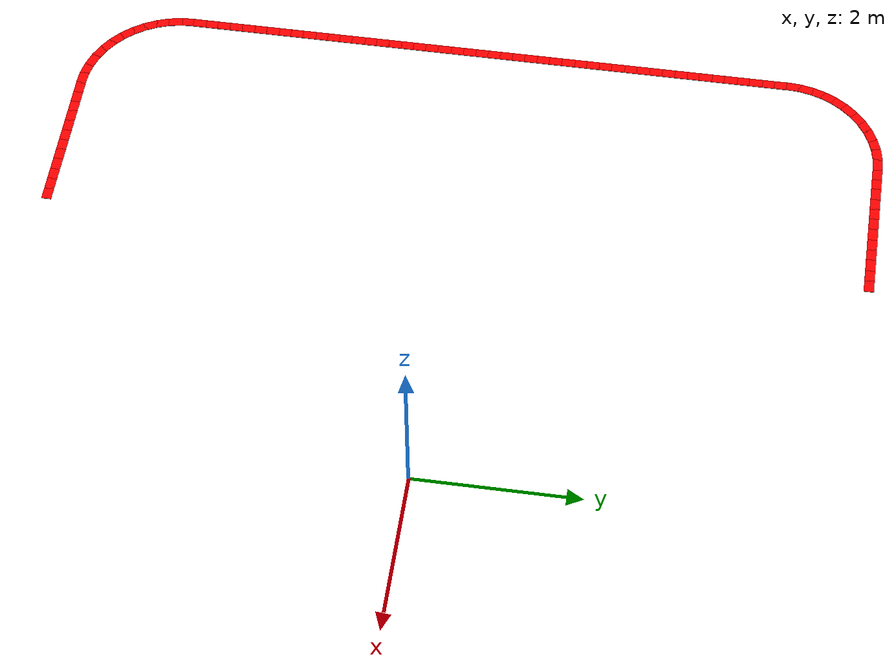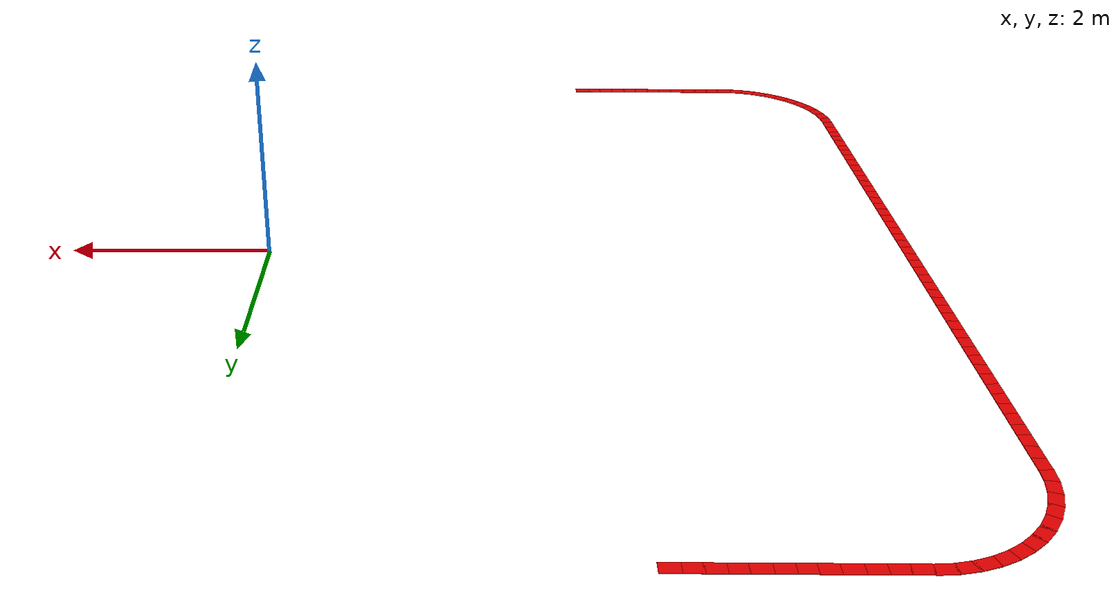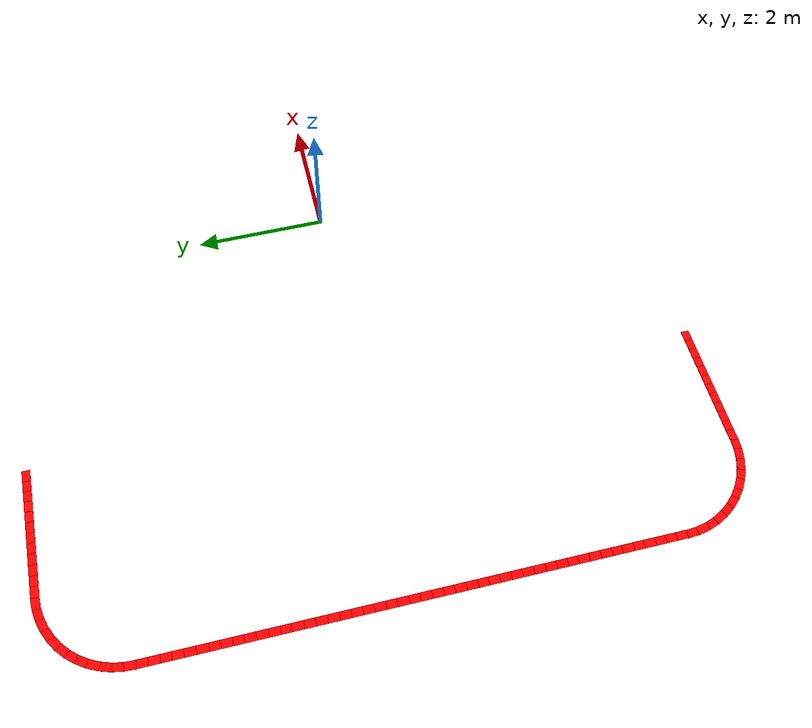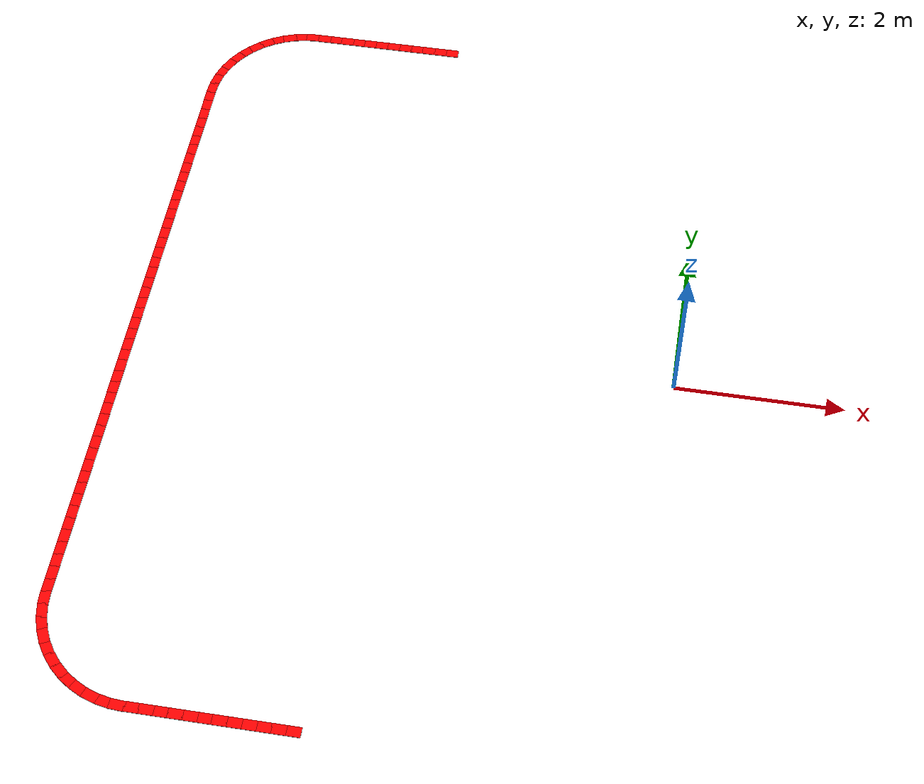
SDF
<sdf version="1.6">
 <world name="transformer_world">
  <model name="path_bottom_0">
   <static>true</static>
   <pose>-5.22090 -5.00000 0.00300 0 0 0.00000</pose>
   <link name="link">
    <visual name="visual">
     <cast_shadows>false</cast_shadows>
     <geometry><box><size>0.16821 0.12000 0.00600</size></box></geometry>
     <material><ambient>1 0 0 1</ambient><diffuse>1 0 0 1</diffuse><emissive>0.35 0 0 1</emissive></material>
    </visual>
   </link>
  </model>
  <model name="path_bottom_1">
   <static>true</static>
   <pose>-5.06269 -5.00000 0.00300 0 0 0.00000</pose>
   <link name="link">
    <visual name="visual">
     <cast_shadows>false</cast_shadows>
     <geometry><box><size>0.16821 0.12000 0.00600</size></box></geometry>
     <material><ambient>1 0 0 1</ambient><diffuse>1 0 0 1</diffuse><emissive>0.35 0 0 1</emissive></material>
    </visual>
   </link>
  </model>
  <model name="path_bottom_2">
   <static>true</static>
   <pose>-4.90448 -5.00000 0.00300 0 0 0.00000</pose>
   <link name="link">
    <visual name="visual">
     <cast_shadows>false</cast_shadows>
     <geometry><box><size>0.16821 0.12000 0.00600</size></box></geometry>
     <material><ambient>1 0 0 1</ambient><diffuse>1 0 0 1</diffuse><emissive>0.35 0 0 1</emissive></material>
    </visual>
   </link>
  </model>
  <model name="path_bottom_3">
   <static>true</static>
   <pose>-4.74627 -5.00000 0.00300 0 0 0.00000</pose>
   <link name="link">
    <visual name="visual">
     <cast_shadows>false</cast_shadows>
     <geometry><box><size>0.16821 0.12000 0.00600</size></box></geometry>
     <material><ambient>1 0 0 1</ambient><diffuse>1 0 0 1</diffuse><emissive>0.35 0 0 1</emissive></material>
    </visual>
   </link>
  </model>
  <model name="path_bottom_4">
   <static>true</static>
   <pose>-4.58806 -5.00000 0.00300 0 0 0.00000</pose>
   <link name="link">
    <visual name="visual">
     <cast_shadows>false</cast_shadows>
     <geometry><box><size>0.16821 0.12000 0.00600</size></box></geometry>
     <material><ambient>1 0 0 1</ambient><diffuse>1 0 0 1</diffuse><emissive>0.35 0 0 1</emissive></material>
    </visual>
   </link>
  </model>
  <model name="path_bottom_5">
   <static>true</static>
   <pose>-4.42985 -5.00000 0.00300 0 0 0.00000</pose>
   <link name="link">
    <visual name="visual">
     <cast_shadows>false</cast_shadows>
     <geometry><box><size>0.16821 0.12000 0.00600</size></box></geometry>
     <material><ambient>1 0 0 1</ambient><diffuse>1 0 0 1</diffuse><emissive>0.35 0 0 1</emissive></material>
    </visual>
   </link>
  </model>
  <model name="path_bottom_6">
   <static>true</static>
   <pose>-4.27164 -5.00000 0.00300 0 0 0.00000</pose>
   <link name="link">
    <visual name="visual">
     <cast_shadows>false</cast_shadows>
     <geometry><box><size>0.16821 0.12000 0.00600</size></box></geometry>
     <material><ambient>1 0 0 1</ambient><diffuse>1 0 0 1</diffuse><emissive>0.35 0 0 1</emissive></material>
    </visual>
   </link>
  </model>
  <model name="path_bottom_7">
   <static>true</static>
   <pose>-4.11343 -5.00000 0.00300 0 0 0.00000</pose>
   <link name="link">
    <visual name="visual">
     <cast_shadows>false</cast_shadows>
     <geometry><box><size>0.16821 0.12000 0.00600</size></box></geometry>
     <material><ambient>1 0 0 1</ambient><diffuse>1 0 0 1</diffuse><emissive>0.35 0 0 1</emissive></material>
    </visual>
   </link>
  </model>
  <model name="path_bottom_8">
   <static>true</static>
   <pose>-3.95522 -5.00000 0.00300 0 0 0.00000</pose>
   <link name="link">
    <visual name="visual">
     <cast_shadows>false</cast_shadows>
     <geometry><box><size>0.16821 0.12000 0.00600</size></box></geometry>
     <material><ambient>1 0 0 1</ambient><diffuse>1 0 0 1</diffuse><emissive>0.35 0 0 1</emissive></material>
    </visual>
   </link>
  </model>
  <model name="path_bottom_9">
   <static>true</static>
   <pose>-3.79701 -5.00000 0.00300 0 0 0.00000</pose>
   <link name="link">
    <visual name="visual">
     <cast_shadows>false</cast_shadows>
     <geometry><box><size>0.16821 0.12000 0.00600</size></box></geometry>
     <material><ambient>1 0 0 1</ambient><diffuse>1 0 0 1</diffuse><emissive>0.35 0 0 1</emissive></material>
    </visual>
   </link>
  </model>
  <model name="path_bottom_10">
   <static>true</static>
   <pose>-3.63881 -5.00000 0.00300 0 0 0.00000</pose>
   <link name="link">
    <visual name="visual">
     <cast_shadows>false</cast_shadows>
     <geometry><box><size>0.16821 0.12000 0.00600</size></box></geometry>
     <material><ambient>1 0 0 1</ambient><diffuse>1 0 0 1</diffuse><emissive>0.35 0 0 1</emissive></material>
    </visual>
   </link>
  </model>
  <model name="path_bottom_11">
   <static>true</static>
   <pose>-3.48060 -5.00000 0.00300 0 0 0.00000</pose>
   <link name="link">
    <visual name="visual">
     <cast_shadows>false</cast_shadows>
     <geometry><box><size>0.16821 0.12000 0.00600</size></box></geometry>
     <material><ambient>1 0 0 1</ambient><diffuse>1 0 0 1</diffuse><emissive>0.35 0 0 1</emissive></material>
    </visual>
   </link>
  </model>
  <model name="path_top_55">
   <static>true</static>
   <pose>-3.48060 5.00000 0.00300 0 0 3.14159</pose>
   <link name="link">
    <visual name="visual">
     <cast_shadows>false</cast_shadows>
     <geometry><box><size>0.16821 0.12000 0.00600</size></box></geometry>
     <material><ambient>1 0 0 1</ambient><diffuse>1 0 0 1</diffuse><emissive>0.35 0 0 1</emissive></material>
    </visual>
   </link>
  </model>
  <model name="path_top_56">
   <static>true</static>
   <pose>-3.63881 5.00000 0.00300 0 0 3.14159</pose>
   <link name="link">
    <visual name="visual">
     <cast_shadows>false</cast_shadows>
     <geometry><box><size>0.16821 0.12000 0.00600</size></box></geometry>
     <material><ambient>1 0 0 1</ambient><diffuse>1 0 0 1</diffuse><emissive>0.35 0 0 1</emissive></material>
    </visual>
   </link>
  </model>
  <model name="path_top_57">
   <static>true</static>
   <pose>-3.79701 5.00000 0.00300 0 0 3.14159</pose>
   <link name="link">
    <visual name="visual">
     <cast_shadows>false</cast_shadows>
     <geometry><box><size>0.16821 0.12000 0.00600</size></box></geometry>
     <material><ambient>1 0 0 1</ambient><diffuse>1 0 0 1</diffuse><emissive>0.35 0 0 1</emissive></material>
    </visual>
   </link>
  </model>
  <model name="path_top_58">
   <static>true</static>
   <pose>-3.95522 5.00000 0.00300 0 0 3.14159</pose>
   <link name="link">
    <visual name="visual">
     <cast_shadows>false</cast_shadows>
     <geometry><box><size>0.16821 0.12000 0.00600</size></box></geometry>
     <material><ambient>1 0 0 1</ambient><diffuse>1 0 0 1</diffuse><emissive>0.35 0 0 1</emissive></material>
    </visual>
   </link>
  </model>
  <model name="path_top_59">
   <static>true</static>
   <pose>-4.11343 5.00000 0.00300 0 0 3.14159</pose>
   <link name="link">
    <visual name="visual">
     <cast_shadows>false</cast_shadows>
     <geometry><box><size>0.16821 0.12000 0.00600</size></box></geometry>
     <material><ambient>1 0 0 1</ambient><diffuse>1 0 0 1</diffuse><emissive>0.35 0 0 1</emissive></material>
    </visual>
   </link>
  </model>
  <model name="path_top_60">
   <static>true</static>
   <pose>-4.27164 5.00000 0.00300 0 0 3.14159</pose>
   <link name="link">
    <visual name="visual">
     <cast_shadows>false</cast_shadows>
     <geometry><box><size>0.16821 0.12000 0.00600</size></box></geometry>
     <material><ambient>1 0 0 1</ambient><diffuse>1 0 0 1</diffuse><emissive>0.35 0 0 1</emissive></material>
    </visual>
   </link>
  </model>
  <model name="path_top_61">
   <static>true</static>
   <pose>-4.42985 5.00000 0.00300 0 0 3.14159</pose>
   <link name="link">
    <visual name="visual">
     <cast_shadows>false</cast_shadows>
     <geometry><box><size>0.16821 0.12000 0.00600</size></box></geometry>
     <material><ambient>1 0 0 1</ambient><diffuse>1 0 0 1</diffuse><emissive>0.35 0 0 1</emissive></material>
    </visual>
   </link>
  </model>
  <model name="path_top_62">
   <static>true</static>
   <pose>-4.58806 5.00000 0.00300 0 0 3.14159</pose>
   <link name="link">
    <visual name="visual">
     <cast_shadows>false</cast_shadows>
     <geometry><box><size>0.16821 0.12000 0.00600</size></box></geometry>
     <material><ambient>1 0 0 1</ambient><diffuse>1 0 0 1</diffuse><emissive>0.35 0 0 1</emissive></material>
    </visual>
   </link>
  </model>
  <model name="path_top_63">
   <static>true</static>
   <pose>-4.74627 5.00000 0.00300 0 0 3.14159</pose>
   <link name="link">
    <visual name="visual">
     <cast_shadows>false</cast_shadows>
     <geometry><box><size>0.16821 0.12000 0.00600</size></box></geometry>
     <material><ambient>1 0 0 1</ambient><diffuse>1 0 0 1</diffuse><emissive>0.35 0 0 1</emissive></material>
    </visual>
   </link>
  </model>
  <model name="path_top_64">
   <static>true</static>
   <pose>-4.90448 5.00000 0.00300 0 0 3.14159</pose>
   <link name="link">
    <visual name="visual">
     <cast_shadows>false</cast_shadows>
     <geometry><box><size>0.16821 0.12000 0.00600</size></box></geometry>
     <material><ambient>1 0 0 1</ambient><diffuse>1 0 0 1</diffuse><emissive>0.35 0 0 1</emissive></material>
    </visual>
   </link>
  </model>
  <model name="path_top_65">
   <static>true</static>
   <pose>-5.06269 5.00000 0.00300 0 0 3.14159</pose>
   <link name="link">
    <visual name="visual">
     <cast_shadows>false</cast_shadows>
     <geometry><box><size>0.16821 0.12000 0.00600</size></box></geometry>
     <material><ambient>1 0 0 1</ambient><diffuse>1 0 0 1</diffuse><emissive>0.35 0 0 1</emissive></material>
    </visual>
   </link>
  </model>
  <model name="path_top_66">
   <static>true</static>
   <pose>-5.22090 5.00000 0.00300 0 0 3.14159</pose>
   <link name="link">
    <visual name="visual">
     <cast_shadows>false</cast_shadows>
     <geometry><box><size>0.16821 0.12000 0.00600</size></box></geometry>
     <material><ambient>1 0 0 1</ambient><diffuse>1 0 0 1</diffuse><emissive>0.35 0 0 1</emissive></material>
    </visual>
   </link>
  </model>
  <model name="path_corner_tl_0">
   <static>true</static>
   <pose>-5.37848 4.99743 0.00300 0 0 3.20704</pose>
   <link name="link">
    <visual name="visual">
     <cast_shadows>false</cast_shadows>
     <geometry><box><size>0.17708 0.12000 0.00600</size></box></geometry>
     <material><ambient>1 0 0 1</ambient><diffuse>1 0 0 1</diffuse><emissive>0.35 0 0 1</emissive></material>
    </visual>
   </link>
  </model>
  <model name="path_corner_tl_1">
   <static>true</static>
   <pose>-5.53411 4.97694 0.00300 0 0 3.33794</pose>
   <link name="link">
    <visual name="visual">
     <cast_shadows>false</cast_shadows>
     <geometry><box><size>0.17708 0.12000 0.00600</size></box></geometry>
     <material><ambient>1 0 0 1</ambient><diffuse>1 0 0 1</diffuse><emissive>0.35 0 0 1</emissive></material>
    </visual>
   </link>
  </model>
  <model name="path_corner_tl_2">
   <static>true</static>
   <pose>-5.68573 4.93632 0.00300 0 0 3.46884</pose>
   <link name="link">
    <visual name="visual">
     <cast_shadows>false</cast_shadows>
     <geometry><box><size>0.17708 0.12000 0.00600</size></box></geometry>
     <material><ambient>1 0 0 1</ambient><diffuse>1 0 0 1</diffuse><emissive>0.35 0 0 1</emissive></material>
    </visual>
   </link>
  </model>
  <model name="path_corner_tl_3">
   <static>true</static>
   <pose>-5.83075 4.87625 0.00300 0 0 3.59974</pose>
   <link name="link">
    <visual name="visual">
     <cast_shadows>false</cast_shadows>
     <geometry><box><size>0.17708 0.12000 0.00600</size></box></geometry>
     <material><ambient>1 0 0 1</ambient><diffuse>1 0 0 1</diffuse><emissive>0.35 0 0 1</emissive></material>
    </visual>
   </link>
  </model>
  <model name="path_corner_tl_4">
   <static>true</static>
   <pose>-5.96668 4.79776 0.00300 0 0 3.73064</pose>
   <link name="link">
    <visual name="visual">
     <cast_shadows>false</cast_shadows>
     <geometry><box><size>0.17708 0.12000 0.00600</size></box></geometry>
     <material><ambient>1 0 0 1</ambient><diffuse>1 0 0 1</diffuse><emissive>0.35 0 0 1</emissive></material>
    </visual>
   </link>
  </model>
  <model name="path_corner_tl_5">
   <static>true</static>
   <pose>-6.09121 4.70221 0.00300 0 0 3.86154</pose>
   <link name="link">
    <visual name="visual">
     <cast_shadows>false</cast_shadows>
     <geometry><box><size>0.17708 0.12000 0.00600</size></box></geometry>
     <material><ambient>1 0 0 1</ambient><diffuse>1 0 0 1</diffuse><emissive>0.35 0 0 1</emissive></material>
    </visual>
   </link>
  </model>
  <model name="path_corner_tl_6">
   <static>true</static>
   <pose>-6.20221 4.59121 0.00300 0 0 3.99244</pose>
   <link name="link">
    <visual name="visual">
     <cast_shadows>false</cast_shadows>
     <geometry><box><size>0.17708 0.12000 0.00600</size></box></geometry>
     <material><ambient>1 0 0 1</ambient><diffuse>1 0 0 1</diffuse><emissive>0.35 0 0 1</emissive></material>
    </visual>
   </link>
  </model>
  <model name="path_corner_tl_7">
   <static>true</static>
   <pose>-6.29776 4.46668 0.00300 0 0 4.12334</pose>
   <link name="link">
    <visual name="visual">
     <cast_shadows>false</cast_shadows>
     <geometry><box><size>0.17708 0.12000 0.00600</size></box></geometry>
     <material><ambient>1 0 0 1</ambient><diffuse>1 0 0 1</diffuse><emissive>0.35 0 0 1</emissive></material>
    </visual>
   </link>
  </model>
  <model name="path_corner_tl_8">
   <static>true</static>
   <pose>-6.37625 4.33075 0.00300 0 0 4.25424</pose>
   <link name="link">
    <visual name="visual">
     <cast_shadows>false</cast_shadows>
     <geometry><box><size>0.17708 0.12000 0.00600</size></box></geometry>
     <material><ambient>1 0 0 1</ambient><diffuse>1 0 0 1</diffuse><emissive>0.35 0 0 1</emissive></material>
    </visual>
   </link>
  </model>
  <model name="path_corner_tl_9">
   <static>true</static>
   <pose>-6.43632 4.18573 0.00300 0 0 4.38514</pose>
   <link name="link">
    <visual name="visual">
     <cast_shadows>false</cast_shadows>
     <geometry><box><size>0.17708 0.12000 0.00600</size></box></geometry>
     <material><ambient>1 0 0 1</ambient><diffuse>1 0 0 1</diffuse><emissive>0.35 0 0 1</emissive></material>
    </visual>
   </link>
  </model>
  <model name="path_corner_tl_10">
   <static>true</static>
   <pose>-6.47694 4.03411 0.00300 0 0 4.51604</pose>
   <link name="link">
    <visual name="visual">
     <cast_shadows>false</cast_shadows>
     <geometry><box><size>0.17708 0.12000 0.00600</size></box></geometry>
     <material><ambient>1 0 0 1</ambient><diffuse>1 0 0 1</diffuse><emissive>0.35 0 0 1</emissive></material>
    </visual>
   </link>
  </model>
  <model name="path_corner_tl_11">
   <static>true</static>
   <pose>-6.49743 3.87848 0.00300 0 0 4.64694</pose>
   <link name="link">
    <visual name="visual">
     <cast_shadows>false</cast_shadows>
     <geometry><box><size>0.17708 0.12000 0.00600</size></box></geometry>
     <material><ambient>1 0 0 1</ambient><diffuse>1 0 0 1</diffuse><emissive>0.35 0 0 1</emissive></material>
    </visual>
   </link>
  </model>
  <model name="path_left_0">
   <static>true</static>
   <pose>-6.50000 3.72083 0.00300 0 0 -1.57080</pose>
   <link name="link">
    <visual name="visual">
     <cast_shadows>false</cast_shadows>
     <geometry><box><size>0.16833 0.12000 0.00600</size></box></geometry>
     <material><ambient>1 0 0 1</ambient><diffuse>1 0 0 1</diffuse><emissive>0.35 0 0 1</emissive></material>
    </visual>
   </link>
  </model>
  <model name="path_left_1">
   <static>true</static>
   <pose>-6.50000 3.56250 0.00300 0 0 -1.57080</pose>
   <link name="link">
    <visual name="visual">
     <cast_shadows>false</cast_shadows>
     <geometry><box><size>0.16833 0.12000 0.00600</size></box></geometry>
     <material><ambient>1 0 0 1</ambient><diffuse>1 0 0 1</diffuse><emissive>0.35 0 0 1</emissive></material>
    </visual>
   </link>
  </model>
  <model name="path_left_2">
   <static>true</static>
   <pose>-6.50000 3.40417 0.00300 0 0 -1.57080</pose>
   <link name="link">
    <visual name="visual">
     <cast_shadows>false</cast_shadows>
     <geometry><box><size>0.16833 0.12000 0.00600</size></box></geometry>
     <material><ambient>1 0 0 1</ambient><diffuse>1 0 0 1</diffuse><emissive>0.35 0 0 1</emissive></material>
    </visual>
   </link>
  </model>
  <model name="path_left_3">
   <static>true</static>
   <pose>-6.50000 3.24583 0.00300 0 0 -1.57080</pose>
   <link name="link">
    <visual name="visual">
     <cast_shadows>false</cast_shadows>
     <geometry><box><size>0.16833 0.12000 0.00600</size></box></geometry>
     <material><ambient>1 0 0 1</ambient><diffuse>1 0 0 1</diffuse><emissive>0.35 0 0 1</emissive></material>
    </visual>
   </link>
  </model>
  <model name="path_left_4">
   <static>true</static>
   <pose>-6.50000 3.08750 0.00300 0 0 -1.57080</pose>
   <link name="link">
    <visual name="visual">
     <cast_shadows>false</cast_shadows>
     <geometry><box><size>0.16833 0.12000 0.00600</size></box></geometry>
     <material><ambient>1 0 0 1</ambient><diffuse>1 0 0 1</diffuse><emissive>0.35 0 0 1</emissive></material>
    </visual>
   </link>
  </model>
  <model name="path_left_5">
   <static>true</static>
   <pose>-6.50000 2.92917 0.00300 0 0 -1.57080</pose>
   <link name="link">
    <visual name="visual">
     <cast_shadows>false</cast_shadows>
     <geometry><box><size>0.16833 0.12000 0.00600</size></box></geometry>
     <material><ambient>1 0 0 1</ambient><diffuse>1 0 0 1</diffuse><emissive>0.35 0 0 1</emissive></material>
    </visual>
   </link>
  </model>
  <model name="path_left_6">
   <static>true</static>
   <pose>-6.50000 2.77083 0.00300 0 0 -1.57080</pose>
   <link name="link">
    <visual name="visual">
     <cast_shadows>false</cast_shadows>
     <geometry><box><size>0.16833 0.12000 0.00600</size></box></geometry>
     <material><ambient>1 0 0 1</ambient><diffuse>1 0 0 1</diffuse><emissive>0.35 0 0 1</emissive></material>
    </visual>
   </link>
  </model>
  <model name="path_left_7">
   <static>true</static>
   <pose>-6.50000 2.61250 0.00300 0 0 -1.57080</pose>
   <link name="link">
    <visual name="visual">
     <cast_shadows>false</cast_shadows>
     <geometry><box><size>0.16833 0.12000 0.00600</size></box></geometry>
     <material><ambient>1 0 0 1</ambient><diffuse>1 0 0 1</diffuse><emissive>0.35 0 0 1</emissive></material>
    </visual>
   </link>
  </model>
  <model name="path_left_8">
   <static>true</static>
   <pose>-6.50000 2.45417 0.00300 0 0 -1.57080</pose>
   <link name="link">
    <visual name="visual">
     <cast_shadows>false</cast_shadows>
     <geometry><box><size>0.16833 0.12000 0.00600</size></box></geometry>
     <material><ambient>1 0 0 1</ambient><diffuse>1 0 0 1</diffuse><emissive>0.35 0 0 1</emissive></material>
    </visual>
   </link>
  </model>
  <model name="path_left_9">
   <static>true</static>
   <pose>-6.50000 2.29583 0.00300 0 0 -1.57080</pose>
   <link name="link">
    <visual name="visual">
     <cast_shadows>false</cast_shadows>
     <geometry><box><size>0.16833 0.12000 0.00600</size></box></geometry>
     <material><ambient>1 0 0 1</ambient><diffuse>1 0 0 1</diffuse><emissive>0.35 0 0 1</emissive></material>
    </visual>
   </link>
  </model>
  <model name="path_left_10">
   <static>true</static>
   <pose>-6.50000 2.13750 0.00300 0 0 -1.57080</pose>
   <link name="link">
    <visual name="visual">
     <cast_shadows>false</cast_shadows>
     <geometry><box><size>0.16833 0.12000 0.00600</size></box></geometry>
     <material><ambient>1 0 0 1</ambient><diffuse>1 0 0 1</diffuse><emissive>0.35 0 0 1</emissive></material>
    </visual>
   </link>
  </model>
  <model name="path_left_11">
   <static>true</static>
   <pose>-6.50000 1.97917 0.00300 0 0 -1.57080</pose>
   <link name="link">
    <visual name="visual">
     <cast_shadows>false</cast_shadows>
     <geometry><box><size>0.16833 0.12000 0.00600</size></box></geometry>
     <material><ambient>1 0 0 1</ambient><diffuse>1 0 0 1</diffuse><emissive>0.35 0 0 1</emissive></material>
    </visual>
   </link>
  </model>
  <model name="path_left_12">
   <static>true</static>
   <pose>-6.50000 1.82083 0.00300 0 0 -1.57080</pose>
   <link name="link">
    <visual name="visual">
     <cast_shadows>false</cast_shadows>
     <geometry><box><size>0.16833 0.12000 0.00600</size></box></geometry>
     <material><ambient>1 0 0 1</ambient><diffuse>1 0 0 1</diffuse><emissive>0.35 0 0 1</emissive></material>
    </visual>
   </link>
  </model>
  <model name="path_left_13">
   <static>true</static>
   <pose>-6.50000 1.66250 0.00300 0 0 -1.57080</pose>
   <link name="link">
    <visual name="visual">
     <cast_shadows>false</cast_shadows>
     <geometry><box><size>0.16833 0.12000 0.00600</size></box></geometry>
     <material><ambient>1 0 0 1</ambient><diffuse>1 0 0 1</diffuse><emissive>0.35 0 0 1</emissive></material>
    </visual>
   </link>
  </model>
  <model name="path_left_14">
   <static>true</static>
   <pose>-6.50000 1.50417 0.00300 0 0 -1.57080</pose>
   <link name="link">
    <visual name="visual">
     <cast_shadows>false</cast_shadows>
     <geometry><box><size>0.16833 0.12000 0.00600</size></box></geometry>
     <material><ambient>1 0 0 1</ambient><diffuse>1 0 0 1</diffuse><emissive>0.35 0 0 1</emissive></material>
    </visual>
   </link>
  </model>
  <model name="path_left_15">
   <static>true</static>
   <pose>-6.50000 1.34583 0.00300 0 0 -1.57080</pose>
   <link name="link">
    <visual name="visual">
     <cast_shadows>false</cast_shadows>
     <geometry><box><size>0.16833 0.12000 0.00600</size></box></geometry>
     <material><ambient>1 0 0 1</ambient><diffuse>1 0 0 1</diffuse><emissive>0.35 0 0 1</emissive></material>
    </visual>
   </link>
  </model>
  <model name="path_left_16">
   <static>true</static>
   <pose>-6.50000 1.18750 0.00300 0 0 -1.57080</pose>
   <link name="link">
    <visual name="visual">
     <cast_shadows>false</cast_shadows>
     <geometry><box><size>0.16833 0.12000 0.00600</size></box></geometry>
     <material><ambient>1 0 0 1</ambient><diffuse>1 0 0 1</diffuse><emissive>0.35 0 0 1</emissive></material>
    </visual>
   </link>
  </model>
  <model name="path_left_17">
   <static>true</static>
   <pose>-6.50000 1.02917 0.00300 0 0 -1.57080</pose>
   <link name="link">
    <visual name="visual">
     <cast_shadows>false</cast_shadows>
     <geometry><box><size>0.16833 0.12000 0.00600</size></box></geometry>
     <material><ambient>1 0 0 1</ambient><diffuse>1 0 0 1</diffuse><emissive>0.35 0 0 1</emissive></material>
    </visual>
   </link>
  </model>
  <model name="path_left_18">
   <static>true</static>
   <pose>-6.50000 0.87083 0.00300 0 0 -1.57080</pose>
   <link name="link">
    <visual name="visual">
     <cast_shadows>false</cast_shadows>
     <geometry><box><size>0.16833 0.12000 0.00600</size></box></geometry>
     <material><ambient>1 0 0 1</ambient><diffuse>1 0 0 1</diffuse><emissive>0.35 0 0 1</emissive></material>
    </visual>
   </link>
  </model>
  <model name="path_left_19">
   <static>true</static>
   <pose>-6.50000 0.71250 0.00300 0 0 -1.57080</pose>
   <link name="link">
    <visual name="visual">
     <cast_shadows>false</cast_shadows>
     <geometry><box><size>0.16833 0.12000 0.00600</size></box></geometry>
     <material><ambient>1 0 0 1</ambient><diffuse>1 0 0 1</diffuse><emissive>0.35 0 0 1</emissive></material>
    </visual>
   </link>
  </model>
  <model name="path_left_20">
   <static>true</static>
   <pose>-6.50000 0.55417 0.00300 0 0 -1.57080</pose>
   <link name="link">
    <visual name="visual">
     <cast_shadows>false</cast_shadows>
     <geometry><box><size>0.16833 0.12000 0.00600</size></box></geometry>
     <material><ambient>1 0 0 1</ambient><diffuse>1 0 0 1</diffuse><emissive>0.35 0 0 1</emissive></material>
    </visual>
   </link>
  </model>
  <model name="path_left_21">
   <static>true</static>
   <pose>-6.50000 0.39583 0.00300 0 0 -1.57080</pose>
   <link name="link">
    <visual name="visual">
     <cast_shadows>false</cast_shadows>
     <geometry><box><size>0.16833 0.12000 0.00600</size></box></geometry>
     <material><ambient>1 0 0 1</ambient><diffuse>1 0 0 1</diffuse><emissive>0.35 0 0 1</emissive></material>
    </visual>
   </link>
  </model>
  <model name="path_left_22">
   <static>true</static>
   <pose>-6.50000 0.23750 0.00300 0 0 -1.57080</pose>
   <link name="link">
    <visual name="visual">
     <cast_shadows>false</cast_shadows>
     <geometry><box><size>0.16833 0.12000 0.00600</size></box></geometry>
     <material><ambient>1 0 0 1</ambient><diffuse>1 0 0 1</diffuse><emissive>0.35 0 0 1</emissive></material>
    </visual>
   </link>
  </model>
  <model name="path_left_23">
   <static>true</static>
   <pose>-6.50000 0.07917 0.00300 0 0 -1.57080</pose>
   <link name="link">
    <visual name="visual">
     <cast_shadows>false</cast_shadows>
     <geometry><box><size>0.16833 0.12000 0.00600</size></box></geometry>
     <material><ambient>1 0 0 1</ambient><diffuse>1 0 0 1</diffuse><emissive>0.35 0 0 1</emissive></material>
    </visual>
   </link>
  </model>
  <model name="path_left_24">
   <static>true</static>
   <pose>-6.50000 -0.07917 0.00300 0 0 -1.57080</pose>
   <link name="link">
    <visual name="visual">
     <cast_shadows>false</cast_shadows>
     <geometry><box><size>0.16833 0.12000 0.00600</size></box></geometry>
     <material><ambient>1 0 0 1</ambient><diffuse>1 0 0 1</diffuse><emissive>0.35 0 0 1</emissive></material>
    </visual>
   </link>
  </model>
  <model name="path_left_25">
   <static>true</static>
   <pose>-6.50000 -0.23750 0.00300 0 0 -1.57080</pose>
   <link name="link">
    <visual name="visual">
     <cast_shadows>false</cast_shadows>
     <geometry><box><size>0.16833 0.12000 0.00600</size></box></geometry>
     <material><ambient>1 0 0 1</ambient><diffuse>1 0 0 1</diffuse><emissive>0.35 0 0 1</emissive></material>
    </visual>
   </link>
  </model>
  <model name="path_left_26">
   <static>true</static>
   <pose>-6.50000 -0.39583 0.00300 0 0 -1.57080</pose>
   <link name="link">
    <visual name="visual">
     <cast_shadows>false</cast_shadows>
     <geometry><box><size>0.16833 0.12000 0.00600</size></box></geometry>
     <material><ambient>1 0 0 1</ambient><diffuse>1 0 0 1</diffuse><emissive>0.35 0 0 1</emissive></material>
    </visual>
   </link>
  </model>
  <model name="path_left_27">
   <static>true</static>
   <pose>-6.50000 -0.55417 0.00300 0 0 -1.57080</pose>
   <link name="link">
    <visual name="visual">
     <cast_shadows>false</cast_shadows>
     <geometry><box><size>0.16833 0.12000 0.00600</size></box></geometry>
     <material><ambient>1 0 0 1</ambient><diffuse>1 0 0 1</diffuse><emissive>0.35 0 0 1</emissive></material>
    </visual>
   </link>
  </model>
  <model name="path_left_28">
   <static>true</static>
   <pose>-6.50000 -0.71250 0.00300 0 0 -1.57080</pose>
   <link name="link">
    <visual name="visual">
     <cast_shadows>false</cast_shadows>
     <geometry><box><size>0.16833 0.12000 0.00600</size></box></geometry>
     <material><ambient>1 0 0 1</ambient><diffuse>1 0 0 1</diffuse><emissive>0.35 0 0 1</emissive></material>
    </visual>
   </link>
  </model>
  <model name="path_left_29">
   <static>true</static>
   <pose>-6.50000 -0.87083 0.00300 0 0 -1.57080</pose>
   <link name="link">
    <visual name="visual">
     <cast_shadows>false</cast_shadows>
     <geometry><box><size>0.16833 0.12000 0.00600</size></box></geometry>
     <material><ambient>1 0 0 1</ambient><diffuse>1 0 0 1</diffuse><emissive>0.35 0 0 1</emissive></material>
    </visual>
   </link>
  </model>
  <model name="path_left_30">
   <static>true</static>
   <pose>-6.50000 -1.02917 0.00300 0 0 -1.57080</pose>
   <link name="link">
    <visual name="visual">
     <cast_shadows>false</cast_shadows>
     <geometry><box><size>0.16833 0.12000 0.00600</size></box></geometry>
     <material><ambient>1 0 0 1</ambient><diffuse>1 0 0 1</diffuse><emissive>0.35 0 0 1</emissive></material>
    </visual>
   </link>
  </model>
  <model name="path_left_31">
   <static>true</static>
   <pose>-6.50000 -1.18750 0.00300 0 0 -1.57080</pose>
   <link name="link">
    <visual name="visual">
     <cast_shadows>false</cast_shadows>
     <geometry><box><size>0.16833 0.12000 0.00600</size></box></geometry>
     <material><ambient>1 0 0 1</ambient><diffuse>1 0 0 1</diffuse><emissive>0.35 0 0 1</emissive></material>
    </visual>
   </link>
  </model>
  <model name="path_left_32">
   <static>true</static>
   <pose>-6.50000 -1.34583 0.00300 0 0 -1.57080</pose>
   <link name="link">
    <visual name="visual">
     <cast_shadows>false</cast_shadows>
     <geometry><box><size>0.16833 0.12000 0.00600</size></box></geometry>
     <material><ambient>1 0 0 1</ambient><diffuse>1 0 0 1</diffuse><emissive>0.35 0 0 1</emissive></material>
    </visual>
   </link>
  </model>
  <model name="path_left_33">
   <static>true</static>
   <pose>-6.50000 -1.50417 0.00300 0 0 -1.57080</pose>
   <link name="link">
    <visual name="visual">
     <cast_shadows>false</cast_shadows>
     <geometry><box><size>0.16833 0.12000 0.00600</size></box></geometry>
     <material><ambient>1 0 0 1</ambient><diffuse>1 0 0 1</diffuse><emissive>0.35 0 0 1</emissive></material>
    </visual>
   </link>
  </model>
  <model name="path_left_34">
   <static>true</static>
   <pose>-6.50000 -1.66250 0.00300 0 0 -1.57080</pose>
   <link name="link">
    <visual name="visual">
     <cast_shadows>false</cast_shadows>
     <geometry><box><size>0.16833 0.12000 0.00600</size></box></geometry>
     <material><ambient>1 0 0 1</ambient><diffuse>1 0 0 1</diffuse><emissive>0.35 0 0 1</emissive></material>
    </visual>
   </link>
  </model>
  <model name="path_left_35">
   <static>true</static>
   <pose>-6.50000 -1.82083 0.00300 0 0 -1.57080</pose>
   <link name="link">
    <visual name="visual">
     <cast_shadows>false</cast_shadows>
     <geometry><box><size>0.16833 0.12000 0.00600</size></box></geometry>
     <material><ambient>1 0 0 1</ambient><diffuse>1 0 0 1</diffuse><emissive>0.35 0 0 1</emissive></material>
    </visual>
   </link>
  </model>
  <model name="path_left_36">
   <static>true</static>
   <pose>-6.50000 -1.97917 0.00300 0 0 -1.57080</pose>
   <link name="link">
    <visual name="visual">
     <cast_shadows>false</cast_shadows>
     <geometry><box><size>0.16833 0.12000 0.00600</size></box></geometry>
     <material><ambient>1 0 0 1</ambient><diffuse>1 0 0 1</diffuse><emissive>0.35 0 0 1</emissive></material>
    </visual>
   </link>
  </model>
  <model name="path_left_37">
   <static>true</static>
   <pose>-6.50000 -2.13750 0.00300 0 0 -1.57080</pose>
   <link name="link">
    <visual name="visual">
     <cast_shadows>false</cast_shadows>
     <geometry><box><size>0.16833 0.12000 0.00600</size></box></geometry>
     <material><ambient>1 0 0 1</ambient><diffuse>1 0 0 1</diffuse><emissive>0.35 0 0 1</emissive></material>
    </visual>
   </link>
  </model>
  <model name="path_left_38">
   <static>true</static>
   <pose>-6.50000 -2.29583 0.00300 0 0 -1.57080</pose>
   <link name="link">
    <visual name="visual">
     <cast_shadows>false</cast_shadows>
     <geometry><box><size>0.16833 0.12000 0.00600</size></box></geometry>
     <material><ambient>1 0 0 1</ambient><diffuse>1 0 0 1</diffuse><emissive>0.35 0 0 1</emissive></material>
    </visual>
   </link>
  </model>
  <model name="path_left_39">
   <static>true</static>
   <pose>-6.50000 -2.45417 0.00300 0 0 -1.57080</pose>
   <link name="link">
    <visual name="visual">
     <cast_shadows>false</cast_shadows>
     <geometry><box><size>0.16833 0.12000 0.00600</size></box></geometry>
     <material><ambient>1 0 0 1</ambient><diffuse>1 0 0 1</diffuse><emissive>0.35 0 0 1</emissive></material>
    </visual>
   </link>
  </model>
  <model name="path_left_40">
   <static>true</static>
   <pose>-6.50000 -2.61250 0.00300 0 0 -1.57080</pose>
   <link name="link">
    <visual name="visual">
     <cast_shadows>false</cast_shadows>
     <geometry><box><size>0.16833 0.12000 0.00600</size></box></geometry>
     <material><ambient>1 0 0 1</ambient><diffuse>1 0 0 1</diffuse><emissive>0.35 0 0 1</emissive></material>
    </visual>
   </link>
  </model>
  <model name="path_left_41">
   <static>true</static>
   <pose>-6.50000 -2.77083 0.00300 0 0 -1.57080</pose>
   <link name="link">
    <visual name="visual">
     <cast_shadows>false</cast_shadows>
     <geometry><box><size>0.16833 0.12000 0.00600</size></box></geometry>
     <material><ambient>1 0 0 1</ambient><diffuse>1 0 0 1</diffuse><emissive>0.35 0 0 1</emissive></material>
    </visual>
   </link>
  </model>
  <model name="path_left_42">
   <static>true</static>
   <pose>-6.50000 -2.92917 0.00300 0 0 -1.57080</pose>
   <link name="link">
    <visual name="visual">
     <cast_shadows>false</cast_shadows>
     <geometry><box><size>0.16833 0.12000 0.00600</size></box></geometry>
     <material><ambient>1 0 0 1</ambient><diffuse>1 0 0 1</diffuse><emissive>0.35 0 0 1</emissive></material>
    </visual>
   </link>
  </model>
  <model name="path_left_43">
   <static>true</static>
   <pose>-6.50000 -3.08750 0.00300 0 0 -1.57080</pose>
   <link name="link">
    <visual name="visual">
     <cast_shadows>false</cast_shadows>
     <geometry><box><size>0.16833 0.12000 0.00600</size></box></geometry>
     <material><ambient>1 0 0 1</ambient><diffuse>1 0 0 1</diffuse><emissive>0.35 0 0 1</emissive></material>
    </visual>
   </link>
  </model>
  <model name="path_left_44">
   <static>true</static>
   <pose>-6.50000 -3.24583 0.00300 0 0 -1.57080</pose>
   <link name="link">
    <visual name="visual">
     <cast_shadows>false</cast_shadows>
     <geometry><box><size>0.16833 0.12000 0.00600</size></box></geometry>
     <material><ambient>1 0 0 1</ambient><diffuse>1 0 0 1</diffuse><emissive>0.35 0 0 1</emissive></material>
    </visual>
   </link>
  </model>
  <model name="path_left_45">
   <static>true</static>
   <pose>-6.50000 -3.40417 0.00300 0 0 -1.57080</pose>
   <link name="link">
    <visual name="visual">
     <cast_shadows>false</cast_shadows>
     <geometry><box><size>0.16833 0.12000 0.00600</size></box></geometry>
     <material><ambient>1 0 0 1</ambient><diffuse>1 0 0 1</diffuse><emissive>0.35 0 0 1</emissive></material>
    </visual>
   </link>
  </model>
  <model name="path_left_46">
   <static>true</static>
   <pose>-6.50000 -3.56250 0.00300 0 0 -1.57080</pose>
   <link name="link">
    <visual name="visual">
     <cast_shadows>false</cast_shadows>
     <geometry><box><size>0.16833 0.12000 0.00600</size></box></geometry>
     <material><ambient>1 0 0 1</ambient><diffuse>1 0 0 1</diffuse><emissive>0.35 0 0 1</emissive></material>
    </visual>
   </link>
  </model>
  <model name="path_left_47">
   <static>true</static>
   <pose>-6.50000 -3.72083 0.00300 0 0 -1.57080</pose>
   <link name="link">
    <visual name="visual">
     <cast_shadows>false</cast_shadows>
     <geometry><box><size>0.16833 0.12000 0.00600</size></box></geometry>
     <material><ambient>1 0 0 1</ambient><diffuse>1 0 0 1</diffuse><emissive>0.35 0 0 1</emissive></material>
    </visual>
   </link>
  </model>
  <model name="path_corner_bl_0">
   <static>true</static>
   <pose>-6.49743 -3.87848 0.00300 0 0 4.77784</pose>
   <link name="link">
    <visual name="visual">
     <cast_shadows>false</cast_shadows>
     <geometry><box><size>0.17708 0.12000 0.00600</size></box></geometry>
     <material><ambient>1 0 0 1</ambient><diffuse>1 0 0 1</diffuse><emissive>0.35 0 0 1</emissive></material>
    </visual>
   </link>
  </model>
  <model name="path_corner_bl_1">
   <static>true</static>
   <pose>-6.47694 -4.03411 0.00300 0 0 4.90874</pose>
   <link name="link">
    <visual name="visual">
     <cast_shadows>false</cast_shadows>
     <geometry><box><size>0.17708 0.12000 0.00600</size></box></geometry>
     <material><ambient>1 0 0 1</ambient><diffuse>1 0 0 1</diffuse><emissive>0.35 0 0 1</emissive></material>
    </visual>
   </link>
  </model>
  <model name="path_corner_bl_2">
   <static>true</static>
   <pose>-6.43632 -4.18573 0.00300 0 0 5.03964</pose>
   <link name="link">
    <visual name="visual">
     <cast_shadows>false</cast_shadows>
     <geometry><box><size>0.17708 0.12000 0.00600</size></box></geometry>
     <material><ambient>1 0 0 1</ambient><diffuse>1 0 0 1</diffuse><emissive>0.35 0 0 1</emissive></material>
    </visual>
   </link>
  </model>
  <model name="path_corner_bl_3">
   <static>true</static>
   <pose>-6.37625 -4.33075 0.00300 0 0 5.17054</pose>
   <link name="link">
    <visual name="visual">
     <cast_shadows>false</cast_shadows>
     <geometry><box><size>0.17708 0.12000 0.00600</size></box></geometry>
     <material><ambient>1 0 0 1</ambient><diffuse>1 0 0 1</diffuse><emissive>0.35 0 0 1</emissive></material>
    </visual>
   </link>
  </model>
  <model name="path_corner_bl_4">
   <static>true</static>
   <pose>-6.29776 -4.46668 0.00300 0 0 5.30144</pose>
   <link name="link">
    <visual name="visual">
     <cast_shadows>false</cast_shadows>
     <geometry><box><size>0.17708 0.12000 0.00600</size></box></geometry>
     <material><ambient>1 0 0 1</ambient><diffuse>1 0 0 1</diffuse><emissive>0.35 0 0 1</emissive></material>
    </visual>
   </link>
  </model>
  <model name="path_corner_bl_5">
   <static>true</static>
   <pose>-6.20221 -4.59121 0.00300 0 0 5.43234</pose>
   <link name="link">
    <visual name="visual">
     <cast_shadows>false</cast_shadows>
     <geometry><box><size>0.17708 0.12000 0.00600</size></box></geometry>
     <material><ambient>1 0 0 1</ambient><diffuse>1 0 0 1</diffuse><emissive>0.35 0 0 1</emissive></material>
    </visual>
   </link>
  </model>
  <model name="path_corner_bl_6">
   <static>true</static>
   <pose>-6.09121 -4.70221 0.00300 0 0 5.56324</pose>
   <link name="link">
    <visual name="visual">
     <cast_shadows>false</cast_shadows>
     <geometry><box><size>0.17708 0.12000 0.00600</size></box></geometry>
     <material><ambient>1 0 0 1</ambient><diffuse>1 0 0 1</diffuse><emissive>0.35 0 0 1</emissive></material>
    </visual>
   </link>
  </model>
  <model name="path_corner_bl_7">
   <static>true</static>
   <pose>-5.96668 -4.79776 0.00300 0 0 5.69414</pose>
   <link name="link">
    <visual name="visual">
     <cast_shadows>false</cast_shadows>
     <geometry><box><size>0.17708 0.12000 0.00600</size></box></geometry>
     <material><ambient>1 0 0 1</ambient><diffuse>1 0 0 1</diffuse><emissive>0.35 0 0 1</emissive></material>
    </visual>
   </link>
  </model>
  <model name="path_corner_bl_8">
   <static>true</static>
   <pose>-5.83075 -4.87625 0.00300 0 0 5.82504</pose>
   <link name="link">
    <visual name="visual">
     <cast_shadows>false</cast_shadows>
     <geometry><box><size>0.17708 0.12000 0.00600</size></box></geometry>
     <material><ambient>1 0 0 1</ambient><diffuse>1 0 0 1</diffuse><emissive>0.35 0 0 1</emissive></material>
    </visual>
   </link>
  </model>
  <model name="path_corner_bl_9">
   <static>true</static>
   <pose>-5.68573 -4.93632 0.00300 0 0 5.95594</pose>
   <link name="link">
    <visual name="visual">
     <cast_shadows>false</cast_shadows>
     <geometry><box><size>0.17708 0.12000 0.00600</size></box></geometry>
     <material><ambient>1 0 0 1</ambient><diffuse>1 0 0 1</diffuse><emissive>0.35 0 0 1</emissive></material>
    </visual>
   </link>
  </model>
  <model name="path_corner_bl_10">
   <static>true</static>
   <pose>-5.53411 -4.97694 0.00300 0 0 6.08684</pose>
   <link name="link">
    <visual name="visual">
     <cast_shadows>false</cast_shadows>
     <geometry><box><size>0.17708 0.12000 0.00600</size></box></geometry>
     <material><ambient>1 0 0 1</ambient><diffuse>1 0 0 1</diffuse><emissive>0.35 0 0 1</emissive></material>
    </visual>
   </link>
  </model>
  <model name="path_corner_bl_11">
   <static>true</static>
   <pose>-5.37848 -4.99743 0.00300 0 0 6.21774</pose>
   <link name="link">
    <visual name="visual">
     <cast_shadows>false</cast_shadows>
     <geometry><box><size>0.17708 0.12000 0.00600</size></box></geometry>
     <material><ambient>1 0 0 1</ambient><diffuse>1 0 0 1</diffuse><emissive>0.35 0 0 1</emissive></material>
    </visual>
   </link>
  </model>
 </world>
</sdf>
